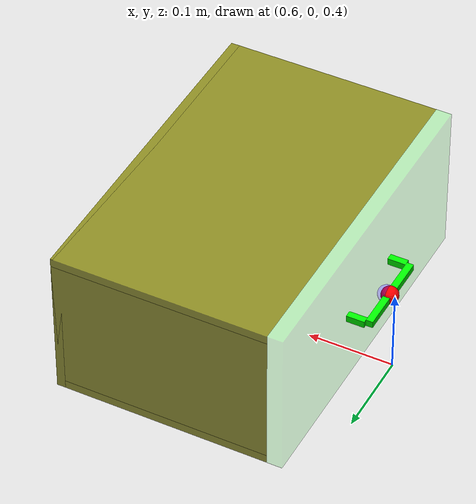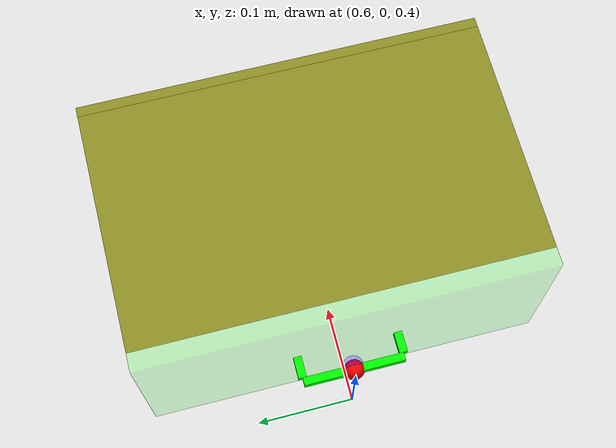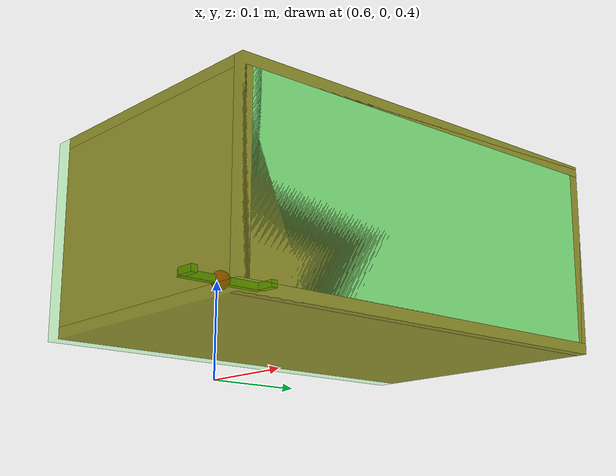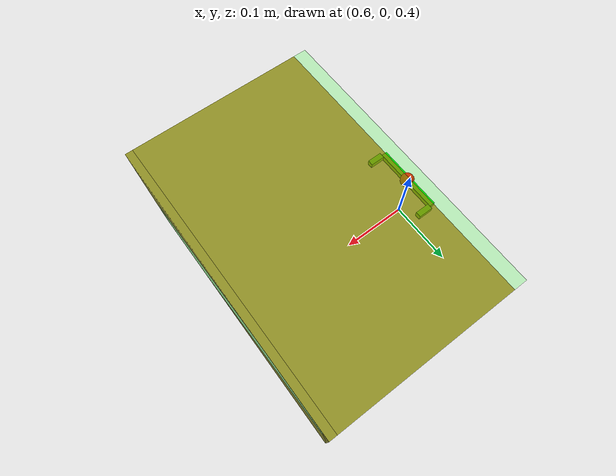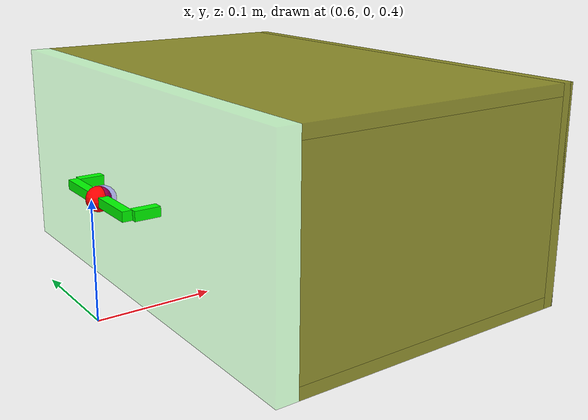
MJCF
<?xml version="1.0"?>
<mujoco model="drawer">
  <worldbody>
    <body name="drawer_base" pos="0.65 0 0.5" mocap="true">
      <!--
        Cabinet (static shell, 5 walls): outer 40x18x25 cm, wall thickness 1 cm.
        Outer bounds: x[-0.001, 0.249], y[-0.20, 0.20], z[-0.09, 0.09]
        Open front (robot side).
      -->
      <geom type="box" name="body_top"    pos="0.124  0      0.085"  size="0.125 0.200 0.005" condim="3" friction="1 0.03 0.003" rgba="0.5 0.5 0 0.8" contype="2" conaffinity="1" solref="0.01 1"/>
      <geom type="box" name="body_bottom" pos="0.124  0     -0.085"  size="0.125 0.200 0.005" condim="3" friction="1 0.03 0.003" rgba="0.5 0.5 0 0.8" contype="2" conaffinity="1" solref="0.01 1"/>
      <geom type="box" name="body_left"   pos="0.124  0.195  0"      size="0.125 0.005 0.080" condim="3" friction="1 0.03 0.003" rgba="0.5 0.5 0 0.8" contype="2" conaffinity="1" solref="0.01 1"/>
      <geom type="box" name="body_right"  pos="0.124 -0.195  0"      size="0.125 0.005 0.080" condim="3" friction="1 0.03 0.003" rgba="0.5 0.5 0 0.8" contype="2" conaffinity="1" solref="0.01 1"/>
      <geom type="box" name="body_back"   pos="0.244  0      0"      size="0.005 0.200 0.090" condim="3" friction="1 0.03 0.003" rgba="0.5 0.5 0 0.8" contype="2" conaffinity="1" solref="0.01 1"/>

      <!-- Base site positioned at handle location when joint = 0 (closed) -->
      <site name="base_site" pos="-0.04 0.0 0.0" size="0.01" rgba="0 0 1 0.3"/>

      <body name="handle">
        <joint name="drawer_slide" type="slide" axis="1 0 0" range="-0.40 0" limited="true" damping="5.0" frictionloss="2.0"/>

        <!-- Front panel (thin, same as before) -->
        <geom type="box" name="drawer_panel" pos="-0.01 0 0" size="0.009 0.20 0.09" condim="3" friction="1 0.03 0.003" rgba="0 1 0 0.2" contype="2" conaffinity="1" solref="0.01 1"/>

        <geom type="box" name="box_bottom" pos="0.124  0      -0.076"  size="0.125 0.190 0.004" condim="3" friction="1 0.03 0.003" rgba="0 0.8 0 0.5" contype="2" conaffinity="1" solref="0.01 1"/>
        <geom type="box" name="box_left"   pos="0.124  0.186   0.004"  size="0.125 0.004 0.076" condim="3" friction="1 0.03 0.003" rgba="0 0.8 0 0.5" contype="2" conaffinity="1" solref="0.01 1"/>
        <geom type="box" name="box_right"  pos="0.124 -0.186   0.004"  size="0.125 0.004 0.076" condim="3" friction="1 0.03 0.003" rgba="0 0.8 0 0.5" contype="2" conaffinity="1" solref="0.01 1"/>
        <geom type="box" name="box_back"   pos="0.245  0       0"      size="0.004 0.190 0.080" condim="3" friction="1 0.03 0.003" rgba="0 0.8 0 0.5" contype="2" conaffinity="1" solref="0.01 1"/>

        <!-- Handle bar and connectors -->
        <geom type="box" name="handle"          pos="-0.044  0.0   0.0" size="0.004 0.05  0.004" condim="3" friction="1 0.03 0.003" rgba="0 1 0 1" contype="2" conaffinity="1" solref="0.01 1"/>
        <geom type="box" name="connector_left"  pos="-0.0295  0.05 0.0" size="0.0105 0.004 0.004" condim="3" friction="1 0.03 0.003" rgba="0 1 0 1" contype="2" conaffinity="1" solref="0.01 1"/>
        <geom type="box" name="connector_right" pos="-0.0295 -0.05 0.0" size="0.0105 0.004 0.004" condim="3" friction="1 0.03 0.003" rgba="0 1 0 1" contype="2" conaffinity="1" solref="0.01 1"/>

        <!-- Object site for observations (manipulation point) -->
        <site name="object_site" pos="-0.044 0.0 0" size="0.01 0.01 0.01" rgba="1 0 0 1"/>
      </body>
    </body>
  </worldbody>
</mujoco>
